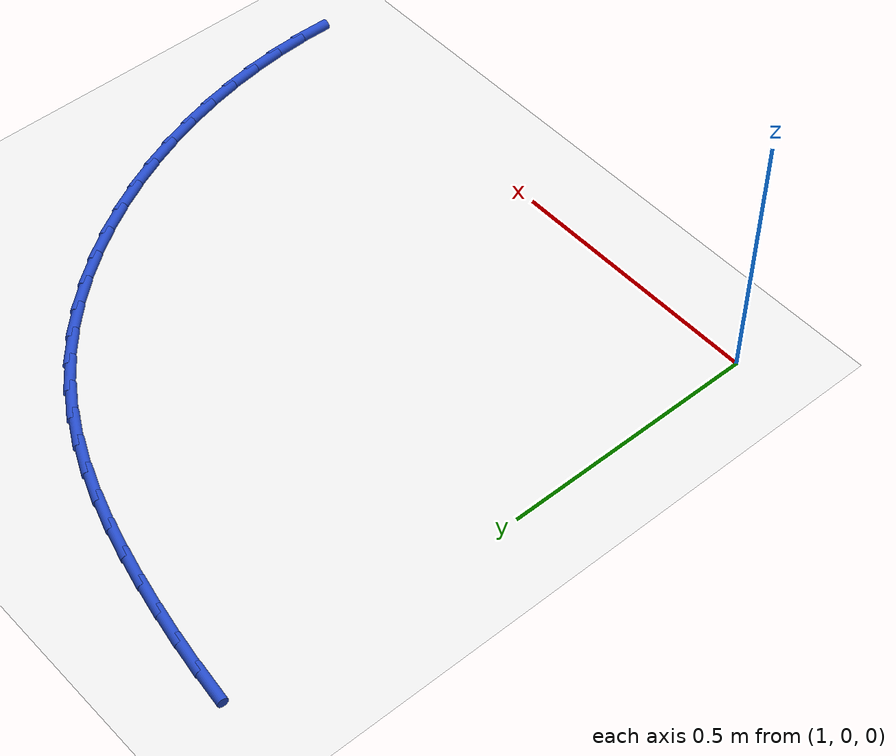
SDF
<sdf version="1.6">
 <world name="default">
  <model name="ground_plane">
   <static>1</static>
   <link name="link">
    <collision name="collision">
     <geometry><plane><normal>0 0 1</normal><size>100 100</size></plane></geometry>
     <surface><friction><ode><mu>100</mu><mu2>50</mu2></ode></friction></surface>
    </collision>
    <visual name="visual">
     <cast_shadows>0</cast_shadows>
     <geometry><plane><normal>0 0 1</normal><size>100 100</size></plane></geometry>
     <material>
      <script><uri>file://media/materials/scripts/gazebo.material</uri><name>Gazebo/WhiteGlow</name></script>
     </material>
    </visual>
   </link>
  </model>
  <model name="line">
   <link name="link_28">
    <pose>1.0688097110129728 1.0601484516012913 0.01 0 1.57 -0.11562776046426787</pose>
    <collision name="collision">
     <geometry><cylinder><radius>0.01</radius><length>0.08</length></cylinder></geometry>
    </collision>
    <visual name="visual">
     <material>
      <script><name>Gazebo/Blue</name><uri>file://media/materials/scripts/gazebo.material</uri></script>
     </material>
     <geometry><cylinder><radius>0.01</radius><length>0.08</length></cylinder></geometry>
    </visual>
   </link>
   <link name="link_29">
    <pose>1.1299237391318497 1.05305031164464 0.01 0 1.57 -0.14782548216166247</pose>
    <collision name="collision">
     <geometry><cylinder><radius>0.01</radius><length>0.08</length></cylinder></geometry>
    </collision>
    <visual name="visual">
     <material>
      <script><name>Gazebo/Blue</name><uri>file://media/materials/scripts/gazebo.material</uri></script>
     </material>
     <geometry><cylinder><radius>0.01</radius><length>0.08</length></cylinder></geometry>
    </visual>
   </link>
   <link name="link_30">
    <pose>1.1909682613966108 1.0439600645528382 0.01 0 1.57 -0.17391858651193462</pose>
    <collision name="collision">
     <geometry><cylinder><radius>0.01</radius><length>0.08</length></cylinder></geometry>
    </collision>
    <visual name="visual">
     <material>
      <script><name>Gazebo/Blue</name><uri>file://media/materials/scripts/gazebo.material</uri></script>
     </material>
     <geometry><cylinder><radius>0.01</radius><length>0.08</length></cylinder></geometry>
    </visual>
   </link>
   <link name="link_31">
    <pose>1.2517142237512786 1.0332873871325283 0.01 0 1.57 -0.199467827098948</pose>
    <collision name="collision">
     <geometry><cylinder><radius>0.01</radius><length>0.08</length></cylinder></geometry>
    </collision>
    <visual name="visual">
     <material>
      <script><name>Gazebo/Blue</name><uri>file://media/materials/scripts/gazebo.material</uri></script>
     </material>
     <geometry><cylinder><radius>0.01</radius><length>0.08</length></cylinder></geometry>
    </visual>
   </link>
   <link name="link_32">
    <pose>1.3119228684222934 1.021115845072448 0.01 0 1.57 -0.23111848587601164</pose>
    <collision name="collision">
     <geometry><cylinder><radius>0.01</radius><length>0.08</length></cylinder></geometry>
    </collision>
    <visual name="visual">
     <material>
      <script><name>Gazebo/Blue</name><uri>file://media/materials/scripts/gazebo.material</uri></script>
     </material>
     <geometry><cylinder><radius>0.01</radius><length>0.08</length></cylinder></geometry>
    </visual>
   </link>
   <link name="link_33">
    <pose>1.371343646486717 1.0071327409928486 0.01 0 1.57 -0.2695809707478352</pose>
    <collision name="collision">
     <geometry><cylinder><radius>0.01</radius><length>0.08</length></cylinder></geometry>
    </collision>
    <visual name="visual">
     <material>
      <script><name>Gazebo/Blue</name><uri>file://media/materials/scripts/gazebo.material</uri></script>
     </material>
     <geometry><cylinder><radius>0.01</radius><length>0.08</length></cylinder></geometry>
    </visual>
   </link>
   <link name="link_34">
    <pose>1.4297252978811794 0.9910014783434491 0.01 0 1.57 -0.3152036334275172</pose>
    <collision name="collision">
     <geometry><cylinder><radius>0.01</radius><length>0.08</length></cylinder></geometry>
    </collision>
    <visual name="visual">
     <material>
      <script><name>Gazebo/Blue</name><uri>file://media/materials/scripts/gazebo.material</uri></script>
     </material>
     <geometry><cylinder><radius>0.01</radius><length>0.08</length></cylinder></geometry>
    </visual>
   </link>
   <link name="link_35">
    <pose>1.48681656254231 0.9723854605739676 0.01 0 1.57 -0.3683045186736865</pose>
    <collision name="collision">
     <geometry><cylinder><radius>0.01</radius><length>0.08</length></cylinder></geometry>
    </collision>
    <visual name="visual">
     <material>
      <script><name>Gazebo/Blue</name><uri>file://media/materials/scripts/gazebo.material</uri></script>
     </material>
     <geometry><cylinder><radius>0.01</radius><length>0.08</length></cylinder></geometry>
    </visual>
   </link>
   <link name="link_36">
    <pose>1.5423661804067383 0.9509480911341227 0.01 0 1.57 -0.4290983522062902</pose>
    <collision name="collision">
     <geometry><cylinder><radius>0.01</radius><length>0.08</length></cylinder></geometry>
    </collision>
    <visual name="visual">
     <material>
      <script><name>Gazebo/Blue</name><uri>file://media/materials/scripts/gazebo.material</uri></script>
     </material>
     <geometry><cylinder><radius>0.01</radius><length>0.08</length></cylinder></geometry>
    </visual>
   </link>
   <link name="link_37">
    <pose>1.5961228914110936 0.926352773473633 0.01 0 1.57 -0.4976016494098979</pose>
    <collision name="collision">
     <geometry><cylinder><radius>0.01</radius><length>0.08</length></cylinder></geometry>
    </collision>
    <visual name="visual">
     <material>
      <script><name>Gazebo/Blue</name><uri>file://media/materials/scripts/gazebo.material</uri></script>
     </material>
     <geometry><cylinder><radius>0.01</radius><length>0.08</length></cylinder></geometry>
    </visual>
   </link>
   <link name="link_38">
    <pose>1.647835435492007 0.8982629110422172 0.01 0 1.57 -0.5735154847375357</pose>
    <collision name="collision">
     <geometry><cylinder><radius>0.01</radius><length>0.08</length></cylinder></geometry>
    </collision>
    <visual name="visual">
     <material>
      <script><name>Gazebo/Blue</name><uri>file://media/materials/scripts/gazebo.material</uri></script>
     </material>
     <geometry><cylinder><radius>0.01</radius><length>0.08</length></cylinder></geometry>
    </visual>
   </link>
   <link name="link_39">
    <pose>1.6972526740681793 0.8663423615844824 0.01 0 1.57 -0.6533565541220342</pose>
    <collision name="collision">
     <geometry><cylinder><radius>0.01</radius><length>0.08</length></cylinder></geometry>
    </collision>
    <visual name="visual">
     <material>
      <script><name>Gazebo/Blue</name><uri>file://media/materials/scripts/gazebo.material</uri></script>
     </material>
     <geometry><cylinder><radius>0.01</radius><length>0.08</length></cylinder></geometry>
    </visual>
   </link>
   <link name="link_40">
    <pose>1.7441694417736957 0.8304269044817966 0.01 0 1.57 -0.7297071940593551</pose>
    <collision name="collision">
     <geometry><cylinder><radius>0.01</radius><length>0.08</length></cylinder></geometry>
    </collision>
    <visual name="visual">
     <material>
      <script><name>Gazebo/Blue</name><uri>file://media/materials/scripts/gazebo.material</uri></script>
     </material>
     <geometry><cylinder><radius>0.01</radius><length>0.08</length></cylinder></geometry>
    </visual>
   </link>
   <link name="link_41">
    <pose>1.7884955012082198 0.7907821042368646 0.01 0 1.57 -0.8016854113529652</pose>
    <collision name="collision">
     <geometry><cylinder><radius>0.01</radius><length>0.08</length></cylinder></geometry>
    </collision>
    <visual name="visual">
     <material>
      <script><name>Gazebo/Blue</name><uri>file://media/materials/scripts/gazebo.material</uri></script>
     </material>
     <geometry><cylinder><radius>0.01</radius><length>0.08</length></cylinder></geometry>
    </visual>
   </link>
   <link name="link_42">
    <pose>1.8301582803592438 0.7477395869137703 0.01 0 1.57 -0.8696532850226882</pose>
    <collision name="collision">
     <geometry><cylinder><radius>0.01</radius><length>0.08</length></cylinder></geometry>
    </collision>
    <visual name="visual">
     <material>
      <script><name>Gazebo/Blue</name><uri>file://media/materials/scripts/gazebo.material</uri></script>
     </material>
     <geometry><cylinder><radius>0.01</radius><length>0.08</length></cylinder></geometry>
    </visual>
   </link>
   <link name="link_43">
    <pose>1.8690852072142614 0.701630978576598 0.01 0 1.57 -0.934061731648508</pose>
    <collision name="collision">
     <geometry><cylinder><radius>0.01</radius><length>0.08</length></cylinder></geometry>
    </collision>
    <visual name="visual">
     <material>
      <script><name>Gazebo/Blue</name><uri>file://media/materials/scripts/gazebo.material</uri></script>
     </material>
     <geometry><cylinder><radius>0.01</radius><length>0.08</length></cylinder></geometry>
    </visual>
   </link>
   <link name="link_44">
    <pose>1.905203709760766 0.652787905289432 0.01 0 1.57 -0.9954140557449097</pose>
    <collision name="collision">
     <geometry><cylinder><radius>0.01</radius><length>0.08</length></cylinder></geometry>
    </collision>
    <visual name="visual">
     <material>
      <script><name>Gazebo/Blue</name><uri>file://media/materials/scripts/gazebo.material</uri></script>
     </material>
     <geometry><cylinder><radius>0.01</radius><length>0.08</length></cylinder></geometry>
    </visual>
   </link>
   <link name="link_45">
    <pose>1.9384412159862492 0.6015419931163561 0.01 0 1.57 -1.0542413267189832</pose>
    <collision name="collision">
     <geometry><cylinder><radius>0.01</radius><length>0.08</length></cylinder></geometry>
    </collision>
    <visual name="visual">
     <material>
      <script><name>Gazebo/Blue</name><uri>file://media/materials/scripts/gazebo.material</uri></script>
     </material>
     <geometry><cylinder><radius>0.01</radius><length>0.08</length></cylinder></geometry>
    </visual>
   </link>
   <link name="link_46">
    <pose>1.968725153878206 0.548224868121455 0.01 0 1.57 -1.111087780561097</pose>
    <collision name="collision">
     <geometry><cylinder><radius>0.01</radius><length>0.08</length></cylinder></geometry>
    </collision>
    <visual name="visual">
     <material>
      <script><name>Gazebo/Blue</name><uri>file://media/materials/scripts/gazebo.material</uri></script>
     </material>
     <geometry><cylinder><radius>0.01</radius><length>0.08</length></cylinder></geometry>
    </visual>
   </link>
   <link name="link_47">
    <pose>1.995982951424128 0.4931681563688127 0.01 0 1.57 -1.166504076601145</pose>
    <collision name="collision">
     <geometry><cylinder><radius>0.01</radius><length>0.08</length></cylinder></geometry>
    </collision>
    <visual name="visual">
     <material>
      <script><name>Gazebo/Blue</name><uri>file://media/materials/scripts/gazebo.material</uri></script>
     </material>
     <geometry><cylinder><radius>0.01</radius><length>0.08</length></cylinder></geometry>
    </visual>
   </link>
   <link name="link_48">
    <pose>2.0201420366115097 0.4367034839225135 0.01 0 1.57 -1.2210460060335027</pose>
    <collision name="collision">
     <geometry><cylinder><radius>0.01</radius><length>0.08</length></cylinder></geometry>
    </collision>
    <visual name="visual">
     <material>
      <script><name>Gazebo/Blue</name><uri>file://media/materials/scripts/gazebo.material</uri></script>
     </material>
     <geometry><cylinder><radius>0.01</radius><length>0.08</length></cylinder></geometry>
    </visual>
   </link>
   <link name="link_49">
    <pose>2.041129954434111 0.37916222942700395 0.01 0 1.57 -1.27512922521526</pose>
    <collision name="collision">
     <geometry><cylinder><radius>0.01</radius><length>0.08</length></cylinder></geometry>
    </collision>
    <visual name="visual">
     <material>
      <script><name>Gazebo/Blue</name><uri>file://media/materials/scripts/gazebo.material</uri></script>
     </material>
     <geometry><cylinder><radius>0.01</radius><length>0.08</length></cylinder></geometry>
    </visual>
   </link>
   <link name="link_50">
    <pose>2.058900863596247 0.3208194945880648 0.01 0 1.57 -1.328704052462315</pose>
    <collision name="collision">
     <geometry><cylinder><radius>0.01</radius><length>0.08</length></cylinder></geometry>
    </collision>
    <visual name="visual">
     <material>
      <script><name>Gazebo/Blue</name><uri>file://media/materials/scripts/gazebo.material</uri></script>
     </material>
     <geometry><cylinder><radius>0.01</radius><length>0.08</length></cylinder></geometry>
    </visual>
   </link>
   <link name="link_51">
    <pose>2.073469215155024 0.2618228878393998 0.01 0 1.57 -1.38174287072992</pose>
    <collision name="collision">
     <geometry><cylinder><radius>0.01</radius><length>0.08</length></cylinder></geometry>
    </collision>
    <visual name="visual">
     <material>
      <script><name>Gazebo/Blue</name><uri>file://media/materials/scripts/gazebo.material</uri></script>
     </material>
     <geometry><cylinder><radius>0.01</radius><length>0.08</length></cylinder></geometry>
    </visual>
   </link>
   <link name="link_52">
    <pose>2.0848577616215755 0.20230246348905997 0.01 0 1.57 -1.4342630308564845</pose>
    <collision name="collision">
     <geometry><cylinder><radius>0.01</radius><length>0.08</length></cylinder></geometry>
    </collision>
    <visual name="visual">
     <material>
      <script><name>Gazebo/Blue</name><uri>file://media/materials/scripts/gazebo.material</uri></script>
     </material>
     <geometry><cylinder><radius>0.01</radius><length>0.08</length></cylinder></geometry>
    </visual>
   </link>
   <link name="link_53">
    <pose>2.0930892555070355 0.1423882758450964 0.01 0 1.57 -1.486295929452793</pose>
    <collision name="collision">
     <geometry><cylinder><radius>0.01</radius><length>0.08</length></cylinder></geometry>
    </collision>
    <visual name="visual">
     <material>
      <script><name>Gazebo/Blue</name><uri>file://media/materials/scripts/gazebo.material</uri></script>
     </material>
     <geometry><cylinder><radius>0.01</radius><length>0.08</length></cylinder></geometry>
    </visual>
   </link>
   <link name="link_54">
    <pose>2.098186449322536 0.08221037921556011 0.01 0 1.57 -1.5378850644658744</pose>
    <collision name="collision">
     <geometry><cylinder><radius>0.01</radius><length>0.08</length></cylinder></geometry>
    </collision>
    <visual name="visual">
     <material>
      <script><name>Gazebo/Blue</name><uri>file://media/materials/scripts/gazebo.material</uri></script>
     </material>
     <geometry><cylinder><radius>0.01</radius><length>0.08</length></cylinder></geometry>
    </visual>
   </link>
   <link name="link_55">
    <pose>2.1001720955792145 0.02189882790850209 0.01 0 1.57 1.5525086199997884</pose>
    <collision name="collision">
     <geometry><cylinder><radius>0.01</radius><length>0.08</length></cylinder></geometry>
    </collision>
    <visual name="visual">
     <material>
      <script><name>Gazebo/Blue</name><uri>file://media/materials/scripts/gazebo.material</uri></script>
     </material>
     <geometry><cylinder><radius>0.01</radius><length>0.08</length></cylinder></geometry>
    </visual>
   </link>
  </model>
 </world>
</sdf>
